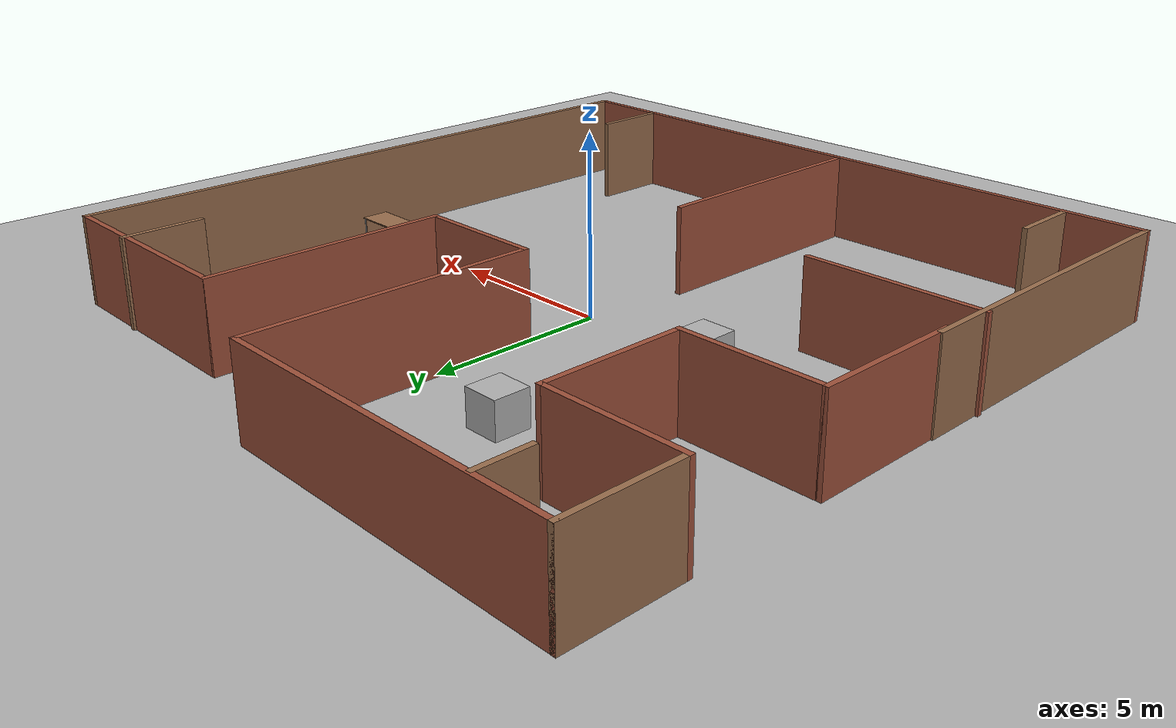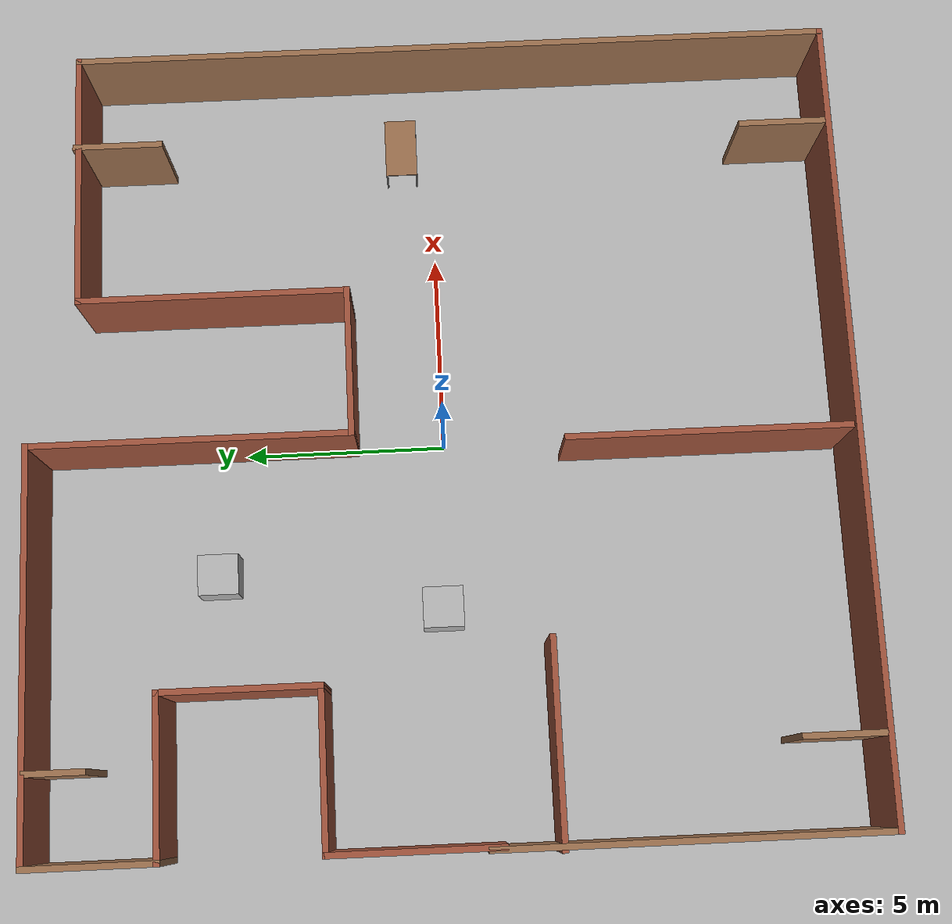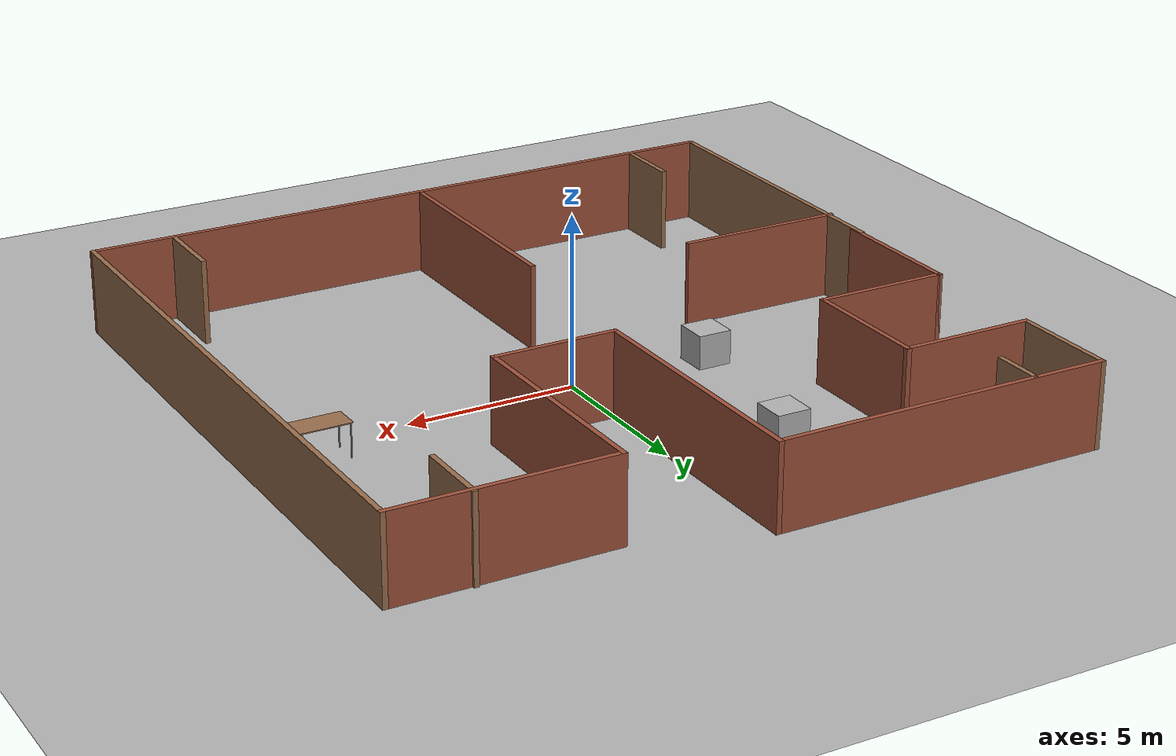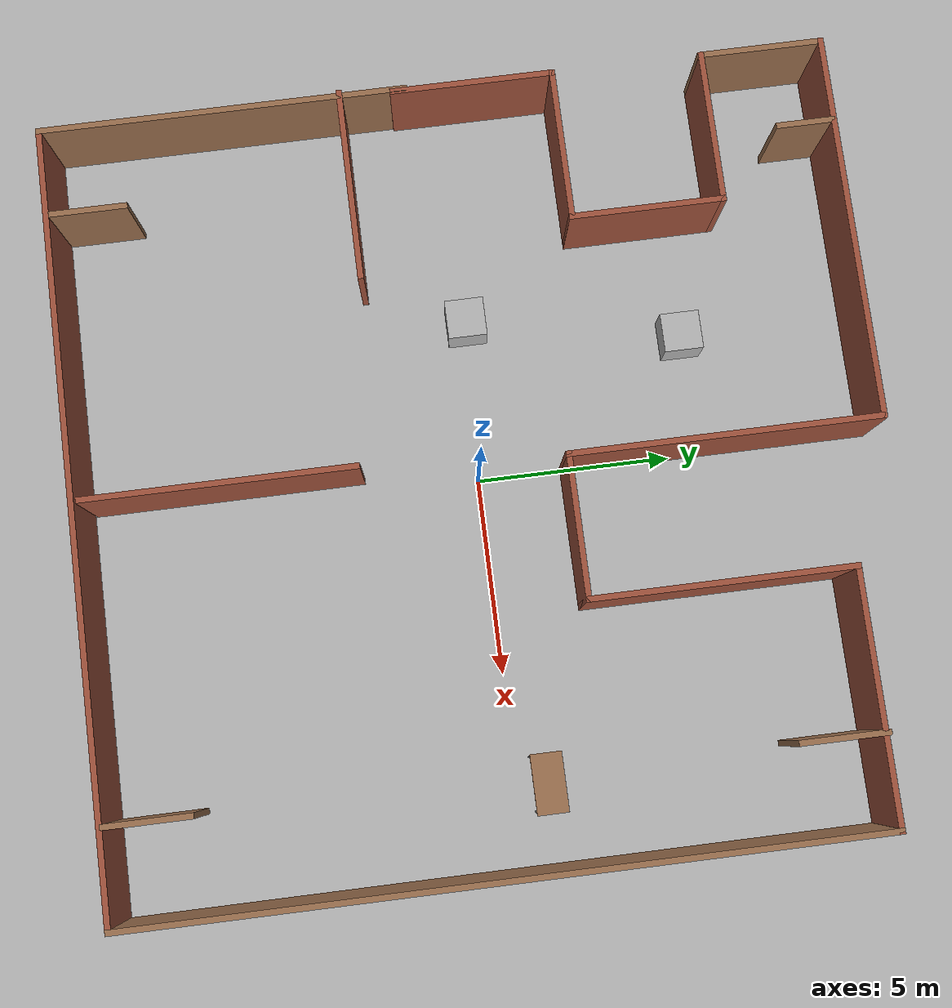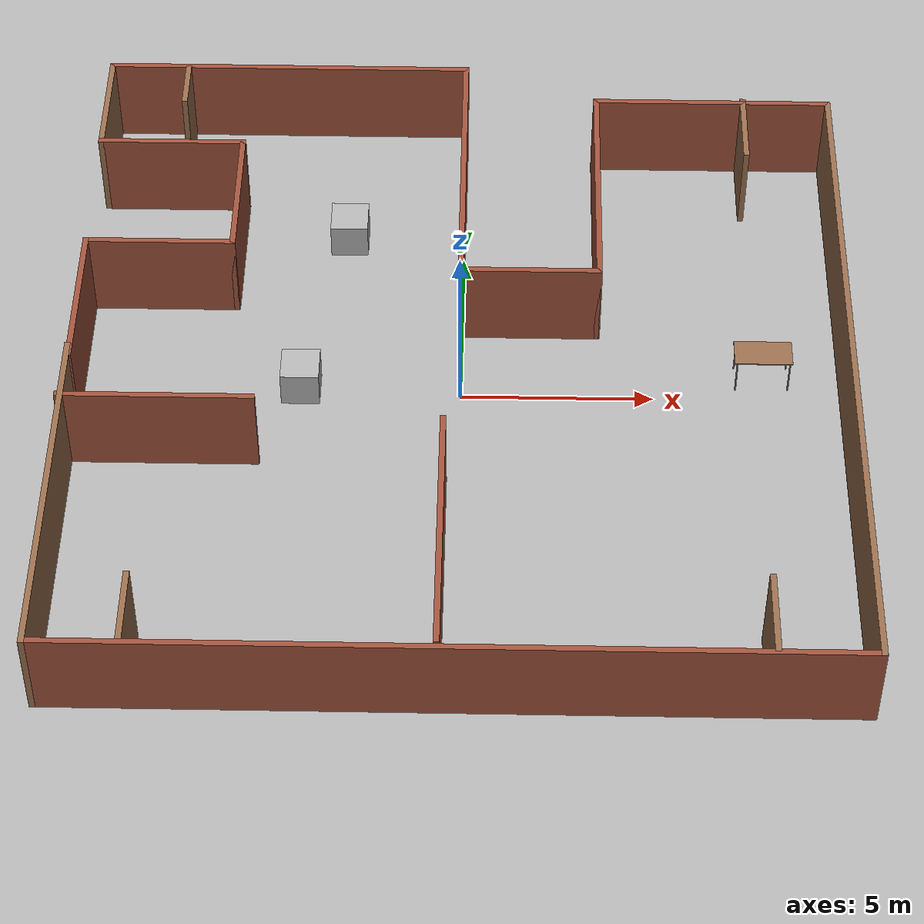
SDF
<sdf version="1.9">
 <world name="default">
  <plugin filename="gz-sim-physics-system" name="gz::sim::systems::Physics"/>
  <plugin filename="gz-sim-user-commands-system" name="gz::sim::systems::UserCommands"/>
  <plugin filename="gz-sim-scene-broadcaster-system" name="gz::sim::systems::SceneBroadcaster"/>
  <plugin filename="gz-sim-sensors-system" name="gz::sim::systems::Sensors">
   <render_engine>ogre2</render_engine>
  </plugin>
  <light name="sun" type="directional">
   <pose>0 0 10 0 -0 0</pose>
   <diffuse>0.8 0.8 0.8 1</diffuse>
   <specular>0.2 0.2 0.2 1</specular>
   <attenuation>
    <range>1000</range>
    <constant>0.9</constant>
    <linear>0.01</linear>
    <quadratic>0.001</quadratic>
   </attenuation>
   <direction>-0.5 0.1 -0.9</direction>
   <spot><inner_angle>0</inner_angle><outer_angle>0</outer_angle><falloff>0</falloff></spot>
  </light>
  <model name="ground_plane">
   <static>1</static>
   <link name="link">
    <collision name="collision">
     <geometry><plane><normal>0 0 1</normal><size>100 100</size></plane></geometry>
     <surface><friction><ode><mu>100</mu><mu2>50</mu2></ode></friction></surface>
    </collision>
    <visual name="visual">
     <cast_shadows>0</cast_shadows>
     <geometry><plane><normal>0 0 1</normal><size>100 100</size></plane></geometry>
     <material>
      <ambient>0.7 0.7 0.7 1</ambient>
      <diffuse>0.7 0.7 0.7 1</diffuse>
      <specular>0.1 0.1 0.1 1</specular>
     </material>
    </visual>
   </link>
  </model>
  <gravity>0 0 -9.8</gravity>
  <magnetic_field>6e-06 2.3e-05 -4.2e-05</magnetic_field>
  <atmosphere type="adiabatic"/>
  <physics name="1ms" type="ignored">
   <max_step_size>0.001</max_step_size>
   <real_time_factor>1</real_time_factor>
   <real_time_update_rate>1000</real_time_update_rate>
  </physics>
  <scene><ambient>0.4 0.4 0.4 1</ambient><background>0.7 0.7 0.7 1</background><shadows>1</shadows></scene>
  <audio><device>default</device></audio>
  <spherical_coordinates>
   <surface_model>EARTH_WGS84</surface_model>
   <latitude_deg>0</latitude_deg>
   <longitude_deg>0</longitude_deg>
   <elevation>0</elevation>
   <heading_deg>0</heading_deg>
  </spherical_coordinates>
  <model name="Untitled">
   <pose>-0.045364 0.016614 0 0 -0 0</pose>
   <link name="Wall_10">
    <collision name="Wall_10_Collision">
     <geometry><box><size>6.75 0.15 2.5</size></box></geometry>
     <pose>0 0 1.25 0 -0 0</pose>
    </collision>
    <visual name="Wall_10_Visual">
     <pose>0 0 1.25 0 -0 0</pose>
     <geometry><box><size>6.75 0.15 2.5</size></box></geometry>
     <material>
      <ambient>0.55 0.28 0.20 1</ambient>
      <diffuse>0.62 0.32 0.23 1</diffuse>
      <specular>0.05 0.05 0.05 1</specular>
     </material>
     <meta><layer>0</layer></meta>
    </visual>
    <pose>3.61142 5.5 0 0 -0 1.5708</pose>
   </link>
   <link name="Wall_11">
    <collision name="Wall_11_Collision">
     <geometry><box><size>6.5 0.15 2.5</size></box></geometry>
     <pose>0 0 1.25 0 -0 0</pose>
    </collision>
    <visual name="Wall_11_Visual">
     <pose>0 0 1.25 0 -0 0</pose>
     <geometry><box><size>6.5 0.15 2.5</size></box></geometry>
     <material>
      <ambient>0.55 0.28 0.20 1</ambient>
      <diffuse>0.62 0.32 0.23 1</diffuse>
      <specular>0.05 0.05 0.05 1</specular>
     </material>
     <meta><layer>0</layer></meta>
    </visual>
    <pose>6.78642 8.8 0 0 -0 0</pose>
   </link>
   <link name="Wall_12">
    <collision name="Wall_12_Collision">
     <geometry><box><size>19 0.15 2.5</size></box></geometry>
     <pose>0 0 1.25 0 -0 0</pose>
    </collision>
    <visual name="Wall_12_Visual">
     <pose>0 0 1.25 0 -0 0</pose>
     <geometry><box><size>19 0.15 2.5</size></box></geometry>
     <material>
      <ambient>0.52 0.37 0.26 1</ambient>
      <diffuse>0.60 0.43 0.30 1</diffuse>
      <specular>0.05 0.05 0.05 1</specular>
     </material>
     <meta><layer>0</layer></meta>
    </visual>
    <pose>9.96142 -0.624999 0 0 -0 -1.5708</pose>
   </link>
   <link name="Wall_13">
    <collision name="Wall_13_Collision">
     <geometry><box><size>20 0.15 2.5</size></box></geometry>
     <pose>0 0 1.25 0 -0 0</pose>
    </collision>
    <visual name="Wall_13_Visual">
     <pose>0 0 1.25 0 -0 0</pose>
     <geometry><box><size>20 0.15 2.5</size></box></geometry>
     <material>
      <ambient>0.55 0.28 0.20 1</ambient>
      <diffuse>0.62 0.32 0.23 1</diffuse>
      <specular>0.05 0.05 0.05 1</specular>
     </material>
     <meta><layer>0</layer></meta>
    </visual>
    <pose>0.036416 -10.05 0 0 -0 3.14159</pose>
   </link>
   <link name="Wall_14">
    <collision name="Wall_14_Collision">
     <geometry><box><size>9.5 0.15 2.5</size></box></geometry>
     <pose>0 0 1.25 0 -0 0</pose>
    </collision>
    <visual name="Wall_14_Visual">
     <pose>0 0 1.25 0 -0 0</pose>
     <geometry><box><size>9.5 0.15 2.5</size></box></geometry>
     <material>
      <ambient>0.52 0.37 0.26 1</ambient>
      <diffuse>0.60 0.43 0.30 1</diffuse>
      <specular>0.05 0.05 0.05 1</specular>
     </material>
     <meta><layer>0</layer></meta>
    </visual>
    <pose>-9.88858 -5.375 0 0 -0 1.5708</pose>
   </link>
   <link name="Wall_17">
    <collision name="Wall_17_Collision">
     <geometry><box><size>2 0.15 2.5</size></box></geometry>
     <pose>0 0 1.25 0 -0 0</pose>
    </collision>
    <visual name="Wall_17_Visual">
     <pose>0 0 1.25 0 -0 0</pose>
     <geometry><box><size>2 0.15 2.5</size></box></geometry>
     <material>
      <ambient>0.52 0.37 0.26 1</ambient>
      <diffuse>0.60 0.43 0.30 1</diffuse>
      <specular>0.05 0.05 0.05 1</specular>
     </material>
     <meta><layer>0</layer></meta>
    </visual>
    <pose>-7.66081 -8.98469 0 0 -0 1.5708</pose>
   </link>
   <link name="Wall_19">
    <collision name="Wall_19_Collision">
     <geometry><box><size>2.25 0.15 2.5</size></box></geometry>
     <pose>0 0 1.25 0 -0 0</pose>
    </collision>
    <visual name="Wall_19_Visual">
     <pose>0 0 1.25 0 -0 0</pose>
     <geometry><box><size>2.25 0.15 2.5</size></box></geometry>
     <material>
      <ambient>0.52 0.37 0.26 1</ambient>
      <diffuse>0.60 0.43 0.30 1</diffuse>
      <specular>0.05 0.05 0.05 1</specular>
     </material>
     <meta><layer>0</layer></meta>
    </visual>
    <pose>7.64091 7.81968 0 0 -0 -1.5708</pose>
   </link>
   <link name="Wall_2">
    <collision name="Wall_2_Collision">
     <geometry><box><size>4.25 0.15 2.5</size></box></geometry>
     <pose>0 0 1.25 0 -0 0</pose>
    </collision>
    <visual name="Wall_2_Visual">
     <pose>0 0 1.25 0 -0 0</pose>
     <geometry><box><size>4.25 0.15 2.5</size></box></geometry>
     <material>
      <ambient>0.55 0.28 0.20 1</ambient>
      <diffuse>0.62 0.32 0.23 1</diffuse>
      <specular>0.05 0.05 0.05 1</specular>
     </material>
     <meta><layer>0</layer></meta>
    </visual>
    <pose>-9.83858 1.05 0 0 -0 1.5708</pose>
   </link>
   <link name="Wall_21">
    <collision name="Wall_21_Collision">
     <geometry><box><size>7 0.15 2.5</size></box></geometry>
     <pose>0 0 1.25 0 -0 0</pose>
    </collision>
    <visual name="Wall_21_Visual">
     <pose>0 0 1.25 0 -0 0</pose>
     <geometry><box><size>7 0.15 2.5</size></box></geometry>
     <material>
      <ambient>0.55 0.28 0.20 1</ambient>
      <diffuse>0.62 0.32 0.23 1</diffuse>
      <specular>0.05 0.05 0.05 1</specular>
     </material>
     <meta><layer>0</layer></meta>
    </visual>
    <pose>-0.330967 -6.43119 0 0 -0 1.5708</pose>
   </link>
   <link name="Wall_23">
    <collision name="Wall_23_Collision">
     <geometry><box><size>2.25 0.15 2.5</size></box></geometry>
     <pose>0 0 1.25 0 -0 0</pose>
    </collision>
    <visual name="Wall_23_Visual">
     <pose>0 0 1.25 0 -0 0</pose>
     <geometry><box><size>2.25 0.15 2.5</size></box></geometry>
     <material>
      <ambient>0.52 0.37 0.26 1</ambient>
      <diffuse>0.60 0.43 0.30 1</diffuse>
      <specular>0.05 0.05 0.05 1</specular>
     </material>
     <meta><layer>0</layer></meta>
    </visual>
    <pose>7.5339 -8.9132 0 0 -0 1.5708</pose>
   </link>
   <link name="Wall_25">
    <collision name="Wall_25_Collision">
     <geometry><box><size>1.5 0.15 2.5</size></box></geometry>
     <pose>0 0 1.25 0 -0 0</pose>
    </collision>
    <visual name="Wall_25_Visual">
     <pose>0 0 1.25 0 -0 0</pose>
     <geometry><box><size>1.5 0.15 2.5</size></box></geometry>
     <material>
      <ambient>0.52 0.37 0.26 1</ambient>
      <diffuse>0.60 0.43 0.30 1</diffuse>
      <specular>0.05 0.05 0.05 1</specular>
     </material>
     <meta><layer>0</layer></meta>
    </visual>
    <pose>-7.71431 9.31824 0 0 -0 -1.5708</pose>
   </link>
   <link name="Wall_27">
    <collision name="Wall_27_Collision">
     <geometry><box><size>5 0.15 2.5</size></box></geometry>
     <pose>0 0 1.25 0 -0 0</pose>
    </collision>
    <visual name="Wall_27_Visual">
     <pose>0 0 1.25 0 -0 0</pose>
     <geometry><box><size>5 0.15 2.5</size></box></geometry>
     <material>
      <ambient>0.55 0.28 0.20 1</ambient>
      <diffuse>0.62 0.32 0.23 1</diffuse>
      <specular>0.05 0.05 0.05 1</specular>
     </material>
     <meta><layer>0</layer></meta>
    </visual>
    <pose>-7.53642 -2.36584 0 0 -0 0</pose>
   </link>
   <link name="Wall_3">
    <collision name="Wall_3_Collision">
     <geometry><box><size>4 0.15 2.5</size></box></geometry>
     <pose>0 0 1.25 0 -0 0</pose>
    </collision>
    <visual name="Wall_3_Visual">
     <pose>0 0 1.25 0 -0 0</pose>
     <geometry><box><size>4 0.15 2.5</size></box></geometry>
     <material>
      <ambient>0.55 0.28 0.20 1</ambient>
      <diffuse>0.62 0.32 0.23 1</diffuse>
      <specular>0.05 0.05 0.05 1</specular>
     </material>
     <meta><layer>0</layer></meta>
    </visual>
    <pose>-7.91358 3.1 0 0 -0 0</pose>
   </link>
   <link name="Wall_4">
    <collision name="Wall_4_Collision">
     <geometry><box><size>4 0.15 2.5</size></box></geometry>
     <pose>0 0 1.25 0 -0 0</pose>
    </collision>
    <visual name="Wall_4_Visual">
     <pose>0 0 1.25 0 -0 0</pose>
     <geometry><box><size>4 0.15 2.5</size></box></geometry>
     <material>
      <ambient>0.55 0.28 0.20 1</ambient>
      <diffuse>0.62 0.32 0.23 1</diffuse>
      <specular>0.05 0.05 0.05 1</specular>
     </material>
     <meta><layer>0</layer></meta>
    </visual>
    <pose>-5.98858 5.025 0 0 -0 1.5708</pose>
   </link>
   <link name="Wall_5">
    <collision name="Wall_5_Collision">
     <geometry><box><size>4 0.15 2.5</size></box></geometry>
     <pose>0 0 1.25 0 -0 0</pose>
    </collision>
    <visual name="Wall_5_Visual">
     <pose>0 0 1.25 0 -0 0</pose>
     <geometry><box><size>4 0.15 2.5</size></box></geometry>
     <material>
      <ambient>0.55 0.28 0.20 1</ambient>
      <diffuse>0.62 0.32 0.23 1</diffuse>
      <specular>0.05 0.05 0.05 1</specular>
     </material>
     <meta><layer>0</layer></meta>
    </visual>
    <pose>-7.91358 6.95 0 0 -0 3.14159</pose>
   </link>
   <link name="Wall_6">
    <collision name="Wall_6_Collision">
     <geometry><box><size>3.25 0.15 2.5</size></box></geometry>
     <pose>0 0 1.25 0 -0 0</pose>
    </collision>
    <visual name="Wall_6_Visual">
     <pose>0 0 1.25 0 -0 0</pose>
     <geometry><box><size>3.25 0.15 2.5</size></box></geometry>
     <material>
      <ambient>0.52 0.37 0.26 1</ambient>
      <diffuse>0.60 0.43 0.30 1</diffuse>
      <specular>0.05 0.05 0.05 1</specular>
     </material>
     <meta><layer>0</layer></meta>
    </visual>
    <pose>-9.83858 8.5 0 0 -0 1.5708</pose>
   </link>
   <link name="Wall_7">
    <collision name="Wall_7_Collision">
     <geometry><box><size>10 0.15 2.5</size></box></geometry>
     <pose>0 0 1.25 0 -0 0</pose>
    </collision>
    <visual name="Wall_7_Visual">
     <pose>0 0 1.25 0 -0 0</pose>
     <geometry><box><size>10 0.15 2.5</size></box></geometry>
     <material>
      <ambient>0.55 0.28 0.20 1</ambient>
      <diffuse>0.62 0.32 0.23 1</diffuse>
      <specular>0.05 0.05 0.05 1</specular>
     </material>
     <meta><layer>0</layer></meta>
    </visual>
    <pose>-4.91358 10.05 0 0 -0 0</pose>
   </link>
   <link name="Wall_8">
    <collision name="Wall_8_Collision">
     <geometry><box><size>8 0.15 2.5</size></box></geometry>
     <pose>0 0 1.25 0 -0 0</pose>
    </collision>
    <visual name="Wall_8_Visual">
     <pose>0 0 1.25 0 -0 0</pose>
     <geometry><box><size>8 0.15 2.5</size></box></geometry>
     <material>
      <ambient>0.55 0.28 0.20 1</ambient>
      <diffuse>0.62 0.32 0.23 1</diffuse>
      <specular>0.05 0.05 0.05 1</specular>
     </material>
     <meta><layer>0</layer></meta>
    </visual>
    <pose>0.011416 6.125 0 0 -0 -1.5708</pose>
   </link>
   <link name="Wall_9">
    <collision name="Wall_9_Collision">
     <geometry><box><size>3.75 0.15 2.5</size></box></geometry>
     <pose>0 0 1.25 0 -0 0</pose>
    </collision>
    <visual name="Wall_9_Visual">
     <pose>0 0 1.25 0 -0 0</pose>
     <geometry><box><size>3.75 0.15 2.5</size></box></geometry>
     <material>
      <ambient>0.55 0.28 0.20 1</ambient>
      <diffuse>0.62 0.32 0.23 1</diffuse>
      <specular>0.05 0.05 0.05 1</specular>
     </material>
     <meta><layer>0</layer></meta>
    </visual>
    <pose>1.81142 2.2 0 0 -0 0</pose>
   </link>
   <static>1</static>
  </model>
  <model name="unit_box">
   <pose>-4.15341 0.185653 0.499995 -1e-05 -0 -0</pose>
   <link name="link">
    <inertial>
     <mass>1</mass>
     <inertia>
      <ixx>0.166667</ixx>
      <ixy>0</ixy>
      <ixz>0</ixz>
      <iyy>0.166667</iyy>
      <iyz>0</iyz>
      <izz>0.166667</izz>
     </inertia>
    </inertial>
    <collision name="collision"><geometry><box><size>1 1 1</size></box></geometry></collision>
    <visual name="visual">
     <geometry><box><size>1 1 1</size></box></geometry>
     <material>
      <ambient>0.7 0.7 0.7 1</ambient>
      <diffuse>0.7 0.7 0.7 1</diffuse>
      <specular>0.1 0.1 0.1 1</specular>
     </material>
    </visual>
   </link>
  </model>
  <model name="unit_box_0">
   <pose>-3.11593 5.67931 0.499995 0 1e-05 0</pose>
   <link name="link">
    <inertial>
     <mass>1</mass>
     <inertia>
      <ixx>0.166667</ixx>
      <ixy>0</ixy>
      <ixz>0</ixz>
      <iyy>0.166667</iyy>
      <iyz>0</iyz>
      <izz>0.166667</izz>
     </inertia>
    </inertial>
    <collision name="collision"><geometry><box><size>1 1 1</size></box></geometry></collision>
    <visual name="visual">
     <geometry><box><size>1 1 1</size></box></geometry>
     <material>
      <ambient>0.7 0.7 0.7 1</ambient>
      <diffuse>0.7 0.7 0.7 1</diffuse>
      <specular>0.1 0.1 0.1 1</specular>
     </material>
    </visual>
   </link>
  </model>
  <model name="table">
   <static>1</static>
   <link name="link">
    <collision name="surface">
     <pose>0 0 1 0 -0 0</pose>
     <geometry><box><size>1.5 0.8 0.03</size></box></geometry>
     <surface><friction><ode><mu>0.6</mu><mu2>0.6</mu2></ode></friction></surface>
    </collision>
    <visual name="visual1">
     <pose>0 0 1 0 -0 0</pose>
     <geometry><box><size>1.5 0.8 0.03</size></box></geometry>
     <material>
      <ambient>0.52 0.37 0.26 1</ambient>
      <diffuse>0.60 0.43 0.30 1</diffuse>
      <specular>0.05 0.05 0.05 1</specular>
     </material>
    </visual>
    <collision name="front_left_leg">
     <pose>0.68 0.38 0.5 0 -0 0</pose>
     <geometry><cylinder><radius>0.02</radius><length>1</length></cylinder></geometry>
    </collision>
    <visual name="front_left_leg">
     <pose>0.68 0.38 0.5 0 -0 0</pose>
     <geometry><cylinder><radius>0.02</radius><length>1</length></cylinder></geometry>
     <material>
      <ambient>0.7 0.7 0.7 1</ambient>
      <diffuse>0.7 0.7 0.7 1</diffuse>
      <specular>0.1 0.1 0.1 1</specular>
     </material>
    </visual>
    <collision name="front_right_leg">
     <pose>0.68 -0.38 0.5 0 -0 0</pose>
     <geometry><cylinder><radius>0.02</radius><length>1</length></cylinder></geometry>
    </collision>
    <visual name="front_right_leg">
     <pose>0.68 -0.38 0.5 0 -0 0</pose>
     <geometry><cylinder><radius>0.02</radius><length>1</length></cylinder></geometry>
     <material>
      <ambient>0.7 0.7 0.7 1</ambient>
      <diffuse>0.7 0.7 0.7 1</diffuse>
      <specular>0.1 0.1 0.1 1</specular>
     </material>
    </visual>
    <collision name="back_right_leg">
     <pose>-0.68 -0.38 0.5 0 -0 0</pose>
     <geometry><cylinder><radius>0.02</radius><length>1</length></cylinder></geometry>
    </collision>
    <visual name="back_right_leg">
     <pose>-0.68 -0.38 0.5 0 -0 0</pose>
     <geometry><cylinder><radius>0.02</radius><length>1</length></cylinder></geometry>
     <material>
      <ambient>0.7 0.7 0.7 1</ambient>
      <diffuse>0.7 0.7 0.7 1</diffuse>
      <specular>0.1 0.1 0.1 1</specular>
     </material>
    </visual>
    <collision name="back_left_leg">
     <pose>-0.68 0.38 0.5 0 -0 0</pose>
     <geometry><cylinder><radius>0.02</radius><length>1</length></cylinder></geometry>
    </collision>
    <visual name="back_left_leg">
     <pose>-0.68 0.38 0.5 0 -0 0</pose>
     <geometry><cylinder><radius>0.02</radius><length>1</length></cylinder></geometry>
     <material>
      <ambient>0.7 0.7 0.7 1</ambient>
      <diffuse>0.7 0.7 0.7 1</diffuse>
      <specular>0.1 0.1 0.1 1</specular>
     </material>
    </visual>
   </link>
   <pose>7.8358 0.766193 0 0 -0 0</pose>
  </model>
 </world>
</sdf>
